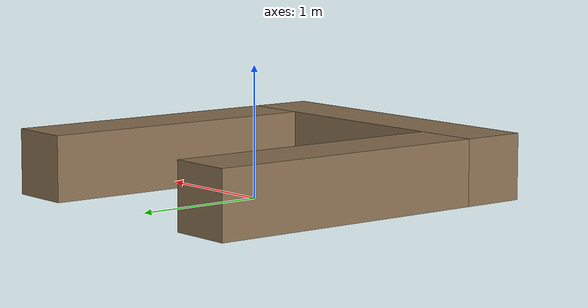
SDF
<?xml version="1.0" ?>
<sdf version="1.9">
  <model name="port_berth">
    <static>true</static>
    <self_collide>false</self_collide>

    <link name="dock">
      <!-- 后墙: y∈[101.0,101.5] (世界) -->
      <collision name="back_wall_collision">
        <pose>0 -1.25 0.25 0 0 0</pose>
        <geometry><box><size>2.5 0.5 0.5</size></box></geometry>
        <surface><friction><ode><mu>0.25</mu><mu2>0.25</mu2></ode></friction></surface>
      </collision>
      <visual name="back_wall_visual">
        <pose>0 -1.25 0.25 0 0 0</pose>
        <geometry><box><size>2.5 0.5 0.5</size></box></geometry>
        <material>
          <ambient>0.35 0.28 0.20 1</ambient>
          <diffuse>0.55 0.45 0.33 1</diffuse>
          <specular>0.1 0.1 0.1 1</specular>
        </material>
      </visual>

      <!-- 左墙: x∈[-1.25,-0.75] -->
      <collision name="left_wall_collision">
        <pose>-1.0 0 0.25 0 0 0</pose>
        <geometry><box><size>0.5 2.5 0.5</size></box></geometry>
        <surface><friction><ode><mu>0.25</mu><mu2>0.25</mu2></ode></friction></surface>
      </collision>
      <visual name="left_wall_visual">
        <pose>-1.0 0 0.25 0 0 0</pose>
        <geometry><box><size>0.5 2.5 0.5</size></box></geometry>
        <material>
          <ambient>0.35 0.28 0.20 1</ambient>
          <diffuse>0.55 0.45 0.33 1</diffuse>
          <specular>0.1 0.1 0.1 1</specular>
        </material>
      </visual>

      <!-- 右墙: x∈[+0.75,+1.25] -->
      <collision name="right_wall_collision">
        <pose>1.0 0 0.25 0 0 0</pose>
        <geometry><box><size>0.5 2.5 0.5</size></box></geometry>
        <surface><friction><ode><mu>0.25</mu><mu2>0.25</mu2></ode></friction></surface>
      </collision>
      <visual name="right_wall_visual">
        <pose>1.0 0 0.25 0 0 0</pose>
        <geometry><box><size>0.5 2.5 0.5</size></box></geometry>
        <material>
          <ambient>0.35 0.28 0.20 1</ambient>
          <diffuse>0.55 0.45 0.33 1</diffuse>
          <specular>0.1 0.1 0.1 1</specular>
        </material>
      </visual>
    </link>
  </model>
</sdf>
